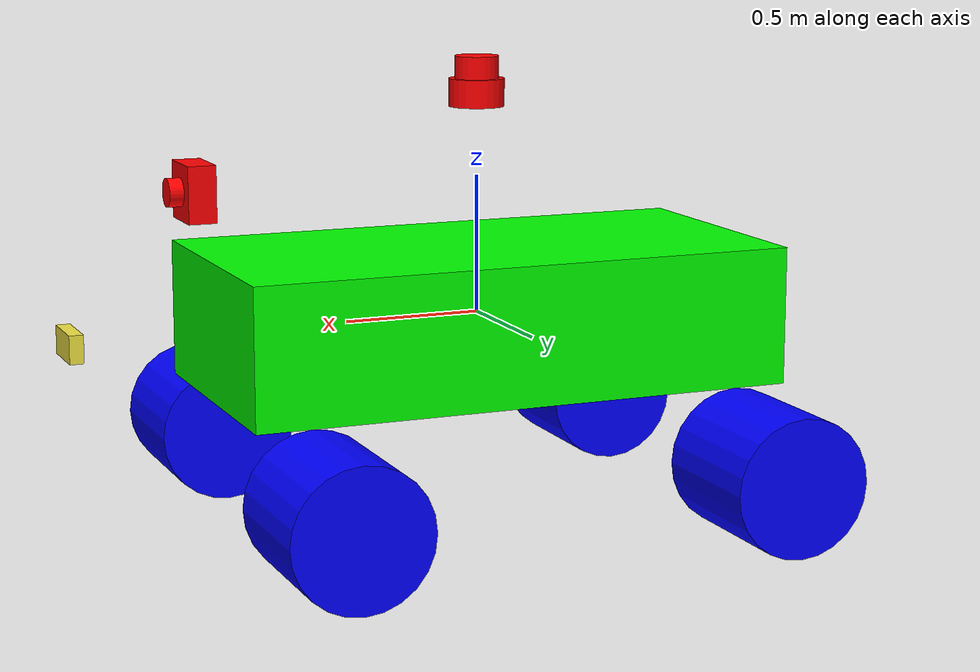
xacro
<?xml version="1.0"?>
<robot xmlns:xacro="http://www.ros.org/wiki/xacro" name="track_bot">

    <xacro:include filename="funtions.xacro"/>

<!-- ***** Body Setup ***** -->
    <xacro:property name="body_origin_x" value="0"/>
    <xacro:property name="body_origin_y" value="0"/>
    <xacro:property name="body_origin_z" value="0"/>

    <xacro:property name="body_size_x" value="2"/>
    <xacro:property name="body_size_y" value="1"/>
    <xacro:property name="body_size_z" value="0.5"/>

    <xacro:property name="body_mass" value="10"/>

    <xacro:macro name="body_origin">
        <origin xyz="${body_origin_x} ${body_origin_y} ${body_origin_z}" rpy="0 0 0"/>
    </xacro:macro>

    <xacro:macro name="body_shape">
        <geometry>
            <box size="${body_size_x} ${body_size_y} ${body_size_z}"/>
        </geometry>
    </xacro:macro>

    <xacro:macro name="body_color">
        <material name="green"/>
    </xacro:macro>

    <xacro:macro name="body_link">
        <visual>
            <xacro:body_shape/>
            <xacro:body_color/>
        </visual>
        <collision>
            <xacro:body_shape/>
        </collision>
        <xacro:inertial_box mass="${body_mass}" x="${body_size_x}" y="${body_size_y}" z="${body_size_z}">
            <origin xyz="0 0 0" rpy="0 0 0"/>
        </xacro:inertial_box>
    </xacro:macro>
<!-- ***** Body Setup End ***** -->

<!-- ***** Wheel Setup ***** -->
    <xacro:property name="wheel_origin_x" value="0.8"/>
    <xacro:property name="wheel_origin_y" value="0.5"/>
    <xacro:property name="wheel_origin_z" value="-0.5"/>

    <xacro:property name="wheel_radius" value="0.25"/>
    <xacro:property name="wheel_length" value="0.5"/>

    <xacro:property name="wheel_mass" value="5"/>

    <xacro:macro name="wheel_offset_origin">
        <origin xyz="0 0 ${wheel_length/2}" rpy="0 0 0"/>
    </xacro:macro>

    <xacro:macro name="wheel_shape">
        <xacro:wheel_offset_origin/>
        <geometry>
            <cylinder radius="${wheel_radius}" length="${wheel_length}"/>
        </geometry>
    </xacro:macro>

    <xacro:macro name="wheel_color">
        <material name="blue"/>
    </xacro:macro>

    <xacro:macro name="wheel_axis">
        <axis xyz="0 0 1"/>
    </xacro:macro>

    <xacro:macro name="wheel_link">
        <visual>
            <xacro:wheel_shape/>
            <xacro:wheel_color/>
        </visual>
        <collision>
            <xacro:wheel_shape/>
        </collision>
        <xacro:inertial_cylinder mass="${wheel_mass}" length="${wheel_length}" radius="${wheel_radius}">
            <xacro:wheel_offset_origin/>
        </xacro:inertial_cylinder>
    </xacro:macro>
<!-- ***** Wheel Setup End ***** -->

<!-- ***** Camera Setup ***** -->
    <xacro:property name="camera_origin_x" value="1"/>
    <xacro:property name="camera_origin_y" value="0"/>
    <xacro:property name="camera_origin_z" value="0.5"/>

    <xacro:property name="camera_size_x" value="0.1"/>
    <xacro:property name="camera_size_y" value="0.2"/>
    <xacro:property name="camera_size_z" value="0.2"/>

    <xacro:property name="camera_sensor_length" value="0.05"/>
    <xacro:property name="camera_sensor_radius" value="0.05"/>

    <xacro:property name="camera_mass" value="0.001"/>

    <xacro:macro name="camera_origin">
        <origin xyz="${camera_origin_x} ${camera_origin_y} ${camera_origin_z}" rpy="0 0 0"/>
    </xacro:macro>

    <xacro:macro name="camera_offset_origin">
        <origin xyz="${camera_size_x/2} 0 0" rpy="0 0 0"/>
    </xacro:macro>

    <xacro:macro name="camera_sensor_offset_origin">
        <origin xyz="${camera_sensor_length/2} 0 0" rpy="0 ${pi/2} 0"/>
    </xacro:macro>

    <xacro:macro name="camera_shape">
        <xacro:camera_offset_origin/>
        <geometry>
            <box size="${camera_size_x} ${camera_size_y} ${camera_size_z}"/>
        </geometry>
    </xacro:macro>

    <xacro:macro name="camera_sensor_shape">
        <xacro:camera_sensor_offset_origin/>
        <geometry>
            <cylinder length="${camera_sensor_length}" radius="${camera_sensor_radius}"/>
        </geometry>
    </xacro:macro>

    <xacro:macro name="camera_color">
        <material name="red"/>
    </xacro:macro>
<!-- ***** Camera Setup End***** -->

<!-- ***** Lidar Setup ***** -->
    <xacro:property name="lidar_origin_x" value="0"/>
    <xacro:property name="lidar_origin_y" value="0"/>
    <xacro:property name="lidar_origin_z" value="0.75"/>

    <xacro:property name="lidar_radius" value="0.1"/>
    <xacro:property name="lidar_length" value="0.1"/>

    <xacro:property name="lidar_sensor_radius" value="0.08"/>
    <xacro:property name="lidar_sensor_length" value="0.08"/>

    <xacro:property name="lidar_mass" value="0.001"/>

    <xacro:macro name="lidar_origin">
        <origin xyz="${lidar_origin_x} ${lidar_origin_y} ${lidar_origin_z}" rpy="0 0 0"/>
    </xacro:macro>

    <xacro:macro name="lidar_offset_origin">
        <origin xyz="0 0 ${lidar_length/2}" rpy="0 0 0"/>
    </xacro:macro>

    <xacro:macro name="lidar_sensor_offset_origin">
        <origin xyz="0 0 0" rpy="0 0 0"/>
    </xacro:macro>

    <xacro:macro name="lidar_shape">
        <xacro:lidar_offset_origin/>
        <geometry>
            <cylinder radius="${lidar_radius}" length="${lidar_length}"/>
        </geometry>
    </xacro:macro>

    <xacro:macro name="lidar_sensor_shape">
        <xacro:lidar_sensor_offset_origin/>
        <geometry>
            <cylinder length="${lidar_sensor_length}" radius="${lidar_sensor_radius}"/>
        </geometry>
    </xacro:macro>

    <xacro:macro name="lidar_color">
        <material name="red"/>
    </xacro:macro>
<!-- ***** Lidar Setup End ***** -->

    <link name="base_link"></link>

<!-- ***** Body Parts ***** -->
    <joint name="body_joint" type="fixed">
        <xacro:body_origin/>
        <parent link="base_link"/>
        <child link="body_link"/>
    </joint>

    <link name="body_link">
        <xacro:body_link/>
    </link>
<!-- ***** Body Parts End ***** -->

<!-- ***** Wheel Parts ***** -->
    <joint name="FR_wheel_joint" type="continuous">
        <parent link="body_link"/>
        <child link="FR_wheel_link"/>
        <origin xyz="${wheel_origin_x} -${wheel_origin_y} ${wheel_origin_z}" rpy="${pi/2} 0 0"/>
        <axis xyz="0 0 -1"/>
        <dynamics damping="1.0" friction="1.0"/>
    </joint>

    <link name="FR_wheel_link">
        <xacro:wheel_link/>
    </link>

    <joint name="FL_wheel_joint" type="continuous">
        <parent link="body_link"/>
        <child link="FL_wheel_link"/>
        <origin xyz="${wheel_origin_x} ${wheel_origin_y} ${wheel_origin_z}" rpy="-${pi/2} 0 0"/>
        <axis xyz="0 0 1"/>
        <dynamics damping="1.0" friction="1.0"/>
    </joint>

    <link name="FL_wheel_link">
        <xacro:wheel_link/>
    </link>

    <joint name="RR_wheel_joint" type="continuous">
        <parent link="body_link"/>
        <child link="RR_wheel_link"/>
        <origin xyz="-${wheel_origin_x} -${wheel_origin_y} ${wheel_origin_z}" rpy="${pi/2} 0 0"/>
        <axis xyz="0 0 -1"/>
        <dynamics damping="1.0" friction="1.0"/>
    </joint>

    <link name="RR_wheel_link">
        <xacro:wheel_link/>
    </link>

    <joint name="RL_wheel_joint" type="continuous">
        <parent link="body_link"/>
        <child link="RL_wheel_link"/>
        <origin xyz="-${wheel_origin_x} ${wheel_origin_y} ${wheel_origin_z}" rpy="-${pi/2} 0 0"/>
        <axis xyz="0 0 1"/>
        <dynamics damping="1.0" friction="1.0"/>
    </joint>

    <link name="RL_wheel_link">
        <xacro:wheel_link/>
    </link>
<!-- ***** Wheel Parts End ***** -->

<!-- ***** Camera Parts ***** -->
    <joint name="camera_joint" type="fixed">
        <xacro:camera_origin/>
        <parent link="body_link"/>
        <child link="camera_link"/>
    </joint>

    <link name="camera_link">
        <visual>
            <xacro:camera_shape/>
            <xacro:camera_color/>
        </visual>

        <collision>
            <xacro:camera_shape/>
        </collision>

        <xacro:inertial_box mass="${camera_mass}" x="${camera_size_x}" y="${camera_size_y}" z="${camera_size_z}">
            <xacro:camera_offset_origin/>
        </xacro:inertial_box>
    </link>

    <joint name="camera_sensor_joint" type="fixed">
        <origin xyz="${camera_size_x} 0 0" rpy="0 0 0"/>
        <parent link="camera_link"/>
        <child link="camera_sensor_link"/>
    </joint>

    <link name="camera_sensor_link">
        <visual>
            <xacro:camera_sensor_shape/>
            <xacro:camera_color/>
        </visual>
        <collision>
            <xacro:camera_sensor_shape/>
        </collision>
        <xacro:inertial_cylinder mass="${camera_mass}" length="${camera_sensor_length}" radius="${camera_sensor_radius}">
            <xacro:camera_sensor_offset_origin/>
        </xacro:inertial_cylinder>
    </link>

    <joint name="camera_optical_joint" type="fixed">
        <origin xyz="0 0 0" rpy="-${pi/2} 0 -${pi/2}"/>
        <parent link="camera_sensor_link"/>
        <child link="camera_optical_link"/>
    </joint>

    <link name="camera_optical_link"></link>
<!-- ***** Camera Parts End ***** -->

<!-- ***** Lidar Parts ***** -->
    <joint name="lidar_joint" type="fixed">
        <xacro:lidar_origin/>
        <parent link="body_link"/>
        <child link="lidar_link"/>
    </joint>

    <link name="lidar_link">
        <visual>
            <xacro:lidar_shape/>
            <xacro:lidar_color/>
        </visual>
        <collision>
            <xacro:lidar_shape/>
        </collision>
        <xacro:inertial_cylinder mass="${lidar_mass}" length="${lidar_length}" radius="${lidar_radius}">
            <xacro:lidar_offset_origin/>
        </xacro:inertial_cylinder>
    </link>

    <joint name="lidar_sensor_joint" type="fixed">
        <origin xyz="0 0 ${lidar_length+lidar_sensor_length/2}" rpy="0 0 0"/>
        <parent link="lidar_link"/>
        <child link="lidar_sensor_link"/>
    </joint>

    <link name="lidar_sensor_link">
        <visual>
            <xacro:lidar_sensor_shape/>
            <xacro:lidar_color/>
        </visual>
        <collision>
            <xacro:lidar_sensor_shape/>
        </collision>
        <xacro:inertial_cylinder mass="${lidar_mass}" length="${lidar_sensor_length}" radius="${lidar_sensor_radius}">
            <xacro:lidar_sensor_offset_origin/>
        </xacro:inertial_cylinder>
    </link>
<!-- ***** Lidar Parts End ***** -->

<!-- ***** Ultrasoni Sensor Parts ***** -->
    <joint name="ultrasonic_joint" type="fixed">
        <origin xyz="1.5 0 0" rpy="0 0 0"/>
        <parent link="body_link"/>
        <child link="ultrasonic_link"/>
    </joint>

    <link name="ultrasonic_link">
        <visual>
            <geometry>
                <box size="0.05 0.2 0.1"/>
            </geometry>
        </visual>
    </link>
<!-- ***** Ultrasoni Sensor Parts End ***** -->

    <xacro:include filename="gazebo.xacro"/>

</robot>

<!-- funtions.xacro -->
<robot xmlns:xacro="http://www.ros.org/wiki/xacro">

<!-- ***** Color Setup ***** -->
    <material name="white">
        <color rgba="1 1 1 1" />
    </material>

    <material name="red">
        <color rgba="1 0 0 1" />
    </material>

    <material name="green">
        <color rgba="0 1 0 1" />
    </material>

    <material name="blue">
        <color rgba="0 0 1 1" />
    </material>
<!-- ***** Color Setup End***** -->

<!-- ***** Inertial Calculate Setup ***** -->
    <xacro:macro name="inertial_box" params="mass x y z *origin">
        <inertial>
            <xacro:insert_block name="origin"/>
            <mass value="${mass}" />
            <inertia ixx="${(1/12) * mass * (y*y+z*z)}" ixy="0.0" ixz="0.0"
                    iyy="${(1/12) * mass * (x*x+z*z)}" iyz="0.0"
                    izz="${(1/12) * mass * (x*x+y*y)}" />
        </inertial>
    </xacro:macro>

    <xacro:macro name="inertial_cylinder" params="mass length radius *origin">
        <inertial>
            <xacro:insert_block name="origin"/>
            <mass value="${mass}" />
            <inertia ixx="${(1/12) * mass * (3*radius*radius + length*length)}" ixy="0.0" ixz="0.0"
                    iyy="${(1/12) * mass * (3*radius*radius + length*length)}" iyz="0.0"
                    izz="${(1/2) * mass * (radius*radius)}" />
        </inertial>
    </xacro:macro>

    <xacro:macro name="inertial_sphere" params="mass radius *origin">
        <inertial>
            <xacro:insert_block name="origin"/>
            <mass value="${mass}" />
            <inertia ixx="${(2/5) * mass * (radius*radius)}" ixy="0.0" ixz="0.0"
                    iyy="${(2/5) * mass * (radius*radius)}" iyz="0.0"
                    izz="${(2/5) * mass * (radius*radius)}" />
        </inertial>
    </xacro:macro>
<!-- ***** Inertial Calculate Setup End***** -->

</robot>
